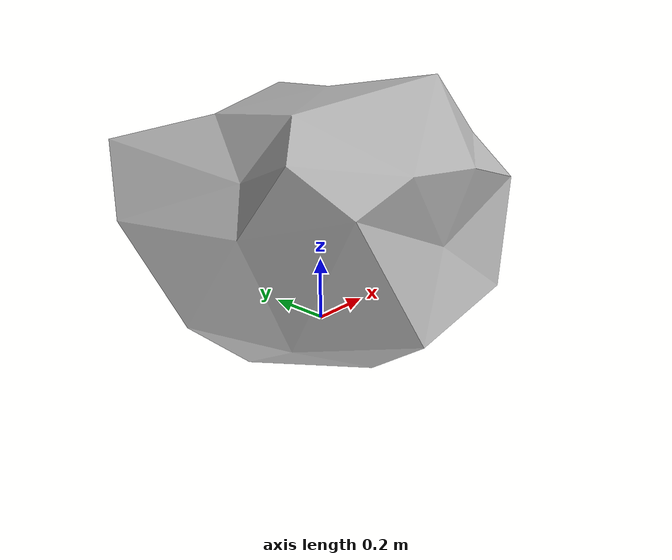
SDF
<?xml version="1.0" ?>
<sdf version="1.6">

  <model name="largeStone">
      <static>true</static>
      <link name="largeStone">

        <inertial>
          <mass>40</mass>
        </inertial>

        <collision name="collision">
          <pose>0 0 0.35  0 0 0</pose>
          <geometry>
            <box>
              <size>1.4 1.4 .7</size>
            </box>
          </geometry>
        </collision>

        <visual name="visual">
          <geometry>
            <mesh>
              <uri>model://landscape/stone_large/meshes/stone_large.dae</uri>
            </mesh>
          </geometry>
          <material>
            <script>
              <uri>model://landscape/stone_large/materials/scripts/stone.material</uri>
              <name>stone/winter</name>
            </script>
          </material>
        </visual>
      </link>
    </model>
</sdf>
